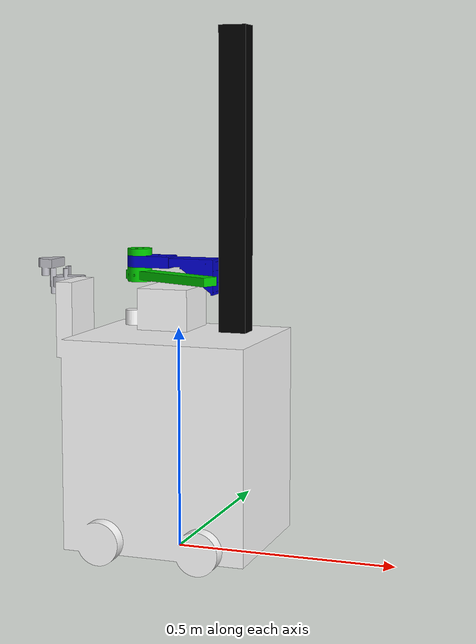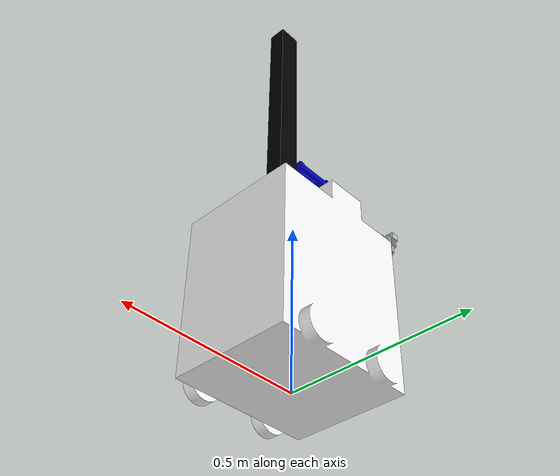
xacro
<?xml version="1.0" ?>
<robot name="ur3" xmlns:xacro="http://www.ros.org/wiki/xacro">

<material name="blue">
    <color rgba="0 0 0.8 1"/>
  </material>

  <material name="white">
    <color rgba="1 1 1 1"/>
  </material>

  <material name="green">
    <color rgba="0 0.8 0 1"/>
  </material>

  <material name="red">
    <color rgba="0.8 0 0 1"/>
  </material>

  <material name="gray">
    <color rgba="1 1 1 1"/>
  </material>

  <material name="black">
    <color rgba="0 0 0 1"/>
  </material>

<link name="base_link">
  <visual>
    <origin xyz="0 0 0" rpy="0 0 0"/>
    <geometry>
      <mesh filename="package://ur3master/meshes/base_link.stl" scale="0.001 0.001 0.001"/>
    </geometry>
    <material name="gray"/>
  </visual>
  <collision>
    <origin xyz="0 0 0" rpy="0 0 0"/>
    <geometry>
      <mesh filename="package://ur3master/meshes/base_link.stl" scale="0.001 0.001 0.001"/>
    </geometry>
  </collision>
</link>

<link name="tower">
  <visual>
    <origin xyz="-0.105418 -0.06341 -0.486908" rpy="0 0 0"/>
    <geometry>
      <mesh filename="package://ur3master/meshes/tower.stl" scale="0.001 0.001 0.001"/>
    </geometry>
    <material name="black"/>
  </visual>
  <collision>
    <origin xyz="-0.105418 -0.06341 -0.486908" rpy="0 0 0"/>
    <geometry>
      <mesh filename="package://ur3master/meshes/tower.stl" scale="0.001 0.001 0.001"/>
    </geometry>
  </collision>
</link>

<link name="arm1">
  <visual>
    <origin xyz="-0.067418 -0.06341 -0.6118" rpy="0 0 0"/>
    <geometry>
      <mesh filename="package://ur3master/meshes/arm1.stl" scale="0.001 0.001 0.001"/>
    </geometry>
    <material name="blue"/>
  </visual>
  <collision>
    <origin xyz="-0.067418 -0.06341 -0.6118" rpy="0 0 0"/>
    <geometry>
      <mesh filename="package://ur3master/meshes/arm1.stl" scale="0.001 0.001 0.001"/>
    </geometry>
  </collision>
</link>

<link name="arm_camera">
  <visual>
    <origin xyz="0.348957 -0.06341 -0.6205" rpy="0 0 0"/>
    <geometry>
      <mesh filename="package://ur3master/meshes/arm_camera.stl" scale="0.001 0.001 0.001"/>
    </geometry>
    <material name="silver_default"/>
  </visual>
  <collision>
    <origin xyz="0.348957 -0.06341 -0.6205" rpy="0 0 0"/>
    <geometry>
      <mesh filename="package://ur3master/meshes/arm_camera.stl" scale="0.001 0.001 0.001"/>
    </geometry>
  </collision>
</link>

<link name="end_effector">
  <visual>
    <origin xyz="0.315207 -0.06341 -0.6005" rpy="0 0 0"/>
    <geometry>
      <mesh filename="package://ur3master/meshes/end_effector.stl" scale="0.001 0.001 0.001"/>
    </geometry>
    <material name="silver_default"/>
  </visual>
  <collision>
    <origin xyz="0.315207 -0.06341 -0.6005" rpy="0 0 0"/>
    <geometry>
      <mesh filename="package://ur3master/meshes/end_effector.stl" scale="0.001 0.001 0.001"/>
    </geometry>
  </collision>
</link>

<link name="arm2">
  <visual>
    <origin xyz="0.120357 -0.06341 -0.6552" rpy="0 0 0"/>
    <geometry>
      <mesh filename="package://ur3master/meshes/arm2.stl" scale="0.001 0.001 0.001"/>
    </geometry>
    <material name="green"/>
  </visual>
  <collision>
    <origin xyz="0.120357 -0.06341 -0.6552" rpy="0 0 0"/>
    <geometry>
      <mesh filename="package://ur3master/meshes/arm2.stl" scale="0.001 0.001 0.001"/>
    </geometry>
  </collision>
</link>

<link name="laser">
	</link>

<link name="webcam">
	</link>

<link name="imu">
	</link>

<link name="kinect_rotator">
	</link>

<link name="kinect_pivot">
	</link>

<link name="camera_depth_frame">
	</link>

<link name="camera_rgb_frame">
	</link>

<link name="camera_depth_optical_frame">
	</link>

<link name="camera_rgb_optical_frame">
	</link>

<joint name="base_link_to_laser" type="fixed">
	<parent link="base_link"/>
	<child link="laser"/>
	<origin xyz="0 0 0.3429" rpy="0.0 0.0 1.570796"/>
	<axis xyz="0 0 0"/>
</joint>

<!-- I think the tf for the webcam is INCORRECT-->
<joint name="base_link_to_webcam" type="fixed">
	<parent link="base_link"/>
	<child link="webcam"/>
	<origin xyz="0.21 -0.051 0.27" rpy="0.0 0.0 0"/>
	<axis xyz="0 0 0"/>
</joint>

<joint name="base_link_to_imu" type="fixed">
	<parent link="base_link"/>
	<child link="imu"/>
	<origin xyz="-0.198 -0.153 0.458" rpy="0.0 0.0 3.14159"/>
	<axis xyz="0 0 0"/>
</joint>

<joint name="tower_to_kinect_rotator" type="fixed">
	<parent link="tower"/>
	<child link="kinect_rotator"/>
	<origin xyz="0 0.0 0.691" rpy="0.0 0.0 3.1415"/> <!-- Base of top robot platform to the bottom of the kinect rotator motorized platform where the joint rotates-->
	<axis xyz="0 0 0"/>
</joint>

<joint name="kinect_rotator_to_kinect_pivot" type="revolute"> <!-- This should be good -->
	<parent link="kinect_rotator"/>
	<child link="kinect_pivot"/>
	<origin xyz="0.0106 0 0.0307" rpy="0.0 0.0 0.0"/>
	<axis xyz="0 0 1"/>
	<limit effort="10" velocity="1.0" lower="-3.14159" upper="3.14159" />
</joint>

<joint name="kinect_pivot_to_camera_depth_frame" type="revolute">
	<parent link="kinect_pivot"/>
	<child link="camera_depth_frame"/>
	<origin xyz="0.029 0.011 0.034" rpy="0.0 0.0 0.0"/>
	<axis xyz="0 1 0"/>
	<limit effort="5" velocity="0.5" lower="-0.7679449" upper="0.3141593" />
</joint>

<joint name="camera_depth_frame_to_camera_rgb_frame" type="fixed">
	<parent link="camera_depth_frame"/>
	<child link="camera_rgb_frame"/>
	<origin xyz="0 -0.026 0" rpy="0.0 0.0 0.0"/>
	<axis xyz="0 0 0"/>
</joint>

<joint name="camera_depth_frame_to_camera_depth_optical_frame" type="fixed">
	<parent link="camera_depth_frame"/>
	<child link="camera_depth_optical_frame"/>
	<origin xyz="0 0 0" rpy="-1.5707963267948966 0 -1.5707963267948966"/>
	<axis xyz="0 0 0"/>
</joint>

<joint name="camera_rgb_frame_to_camera_rgb_optical_frame" type="fixed">
	<parent link="camera_rgb_frame"/>
	<child link="camera_rgb_optical_frame"/>
	<origin xyz="0 0 0" rpy="-1.5707963267948966 0 -1.5707963267948966"/>
	<axis xyz="0 0 0"/>
</joint>

<joint name="base_link_to_tower" type="revolute">
  <origin xyz="0.105418 0.06341 0.486908" rpy="0 0 0"/>
  <parent link="base_link"/>
  <child link="tower"/>
  <axis xyz="0.0 0.0 -1.0"/>
  <limit effort="10" velocity="0.75" lower="-4.21239" upper="1.59534" /><!-- Set lower to proper value to prevent tower hitting limit switch-->
</joint>

<joint name="tower_to_arm1" type="prismatic">
  <origin xyz="-0.038 0.0 0.124892" rpy="0 0 0"/>
  <parent link="tower"/>
  <child link="arm1"/>
  <axis xyz="0.0 0.0 1.0"/>
  <limit upper="0.5" lower="0.0" effort="10" velocity="0.006"/> <!-- make sure that the arm can actually go up 0.5-->
</joint>

<joint name="arm2_to_arm_camera" type="fixed">
  <origin xyz="-0.2286 0.0 -0.0347" rpy="0 0 0"/>
  <parent link="arm2"/>
  <child link="arm_camera"/>
</joint>

<joint name="arm2_to_end_effector" type="fixed">
  <origin xyz="-0.19485 0.0 -0.0547" rpy="0 0 0"/>
  <parent link="arm2"/>
  <child link="end_effector"/>
</joint>

<joint name="arm1_to_arm2" type="revolute">
  <origin xyz="-0.187775 0.0 0.0434" rpy="0 0 0"/>
  <parent link="arm1"/>
  <child link="arm2"/>
  <axis xyz="0.0 0.0 -1.0"/>
  <limit effort="10" velocity="0.31415" lower="-2.6" upper="2.4" /> <!-- fix the bounderies -->
</joint>

</robot>
